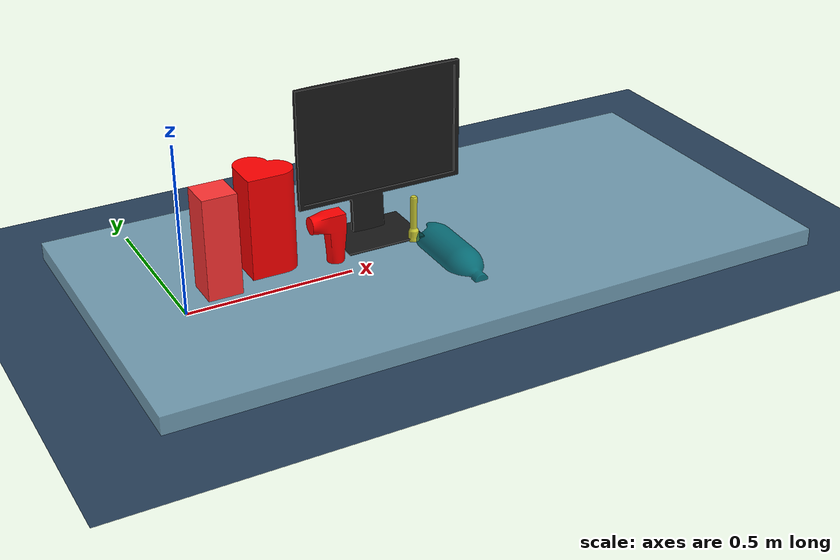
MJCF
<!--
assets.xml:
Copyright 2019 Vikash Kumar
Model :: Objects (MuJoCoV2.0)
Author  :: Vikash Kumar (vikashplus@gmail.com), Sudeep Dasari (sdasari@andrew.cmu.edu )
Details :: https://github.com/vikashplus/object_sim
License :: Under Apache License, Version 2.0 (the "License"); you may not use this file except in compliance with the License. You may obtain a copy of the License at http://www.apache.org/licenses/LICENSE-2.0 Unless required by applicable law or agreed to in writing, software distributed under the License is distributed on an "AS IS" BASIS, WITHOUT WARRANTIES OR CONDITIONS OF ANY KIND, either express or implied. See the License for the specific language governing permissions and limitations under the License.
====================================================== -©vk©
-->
<?xml version="1.0" encoding="utf-8"?>

<mujoco>
	<compiler angle="radian" />

	<option timestep="0.001" tolerance="1e-9" integrator="implicitfast" iterations="100" ls_iterations="100">
		<flag warmstart="enable" multiccd="enable"/>
	</option>

	<visual>
		<global offwidth="1280" offheight="720"/>
	</visual>

	<!-- v ROBOT actuators will inject here v -->

	<!-- v ROBOT actuators will inject here v -->

	<size njmax="500" nconmax="100" />

	<!-- v Per-object assets (meshes, mats) will inject here v -->

    <compiler meshdir="/home/hylander/Documents/github/mujoco/assets/object_sim"/>
    <include file="/home/hylander/Documents/github/mujoco/assets/common_modified.xml"/>
    <include file="/home/hylander/Documents/github/mujoco/assets/object_sim/flashlight/assets.xml"/>

	<!-- ^ Per-object assets (meshes, mats) will inject here ^ -->

	<worldbody>
		<geom name="floor" size="5 5 5" type="plane" material="grid_mat"/>

		<!-- Table Surface === Recall geom SIZE is half-dims so table surface is z=0.1 -->
		<body pos="0.75 0 0" name="table0">
			<geom size="1 0.5 0.05" type="box" name="table" mass="2000" material="table_mat" friction="1 0.005 0.0001"></geom>
			<site name="surface_site" pos="0 0 0" size = "0.02 0.02 0.02" type="box" rgba="1 1 0 0"></site>
			<!-- TEMPORARY SITE -->
		</body>

		<!-- v Object body will inject here v -->

            <body name="box_base" pos="0.1 0.0 0.2" euler="0 0 0">
                <geom name="payload" type="box" mass="0.615" size="0.05 0.05 0.15" material="block_mat"/>
            </body>

            <body name="heart_base" pos="0.2 0.0 0.05" euler="0 0 0">
                <geom name="heart" type="mesh" mesh="heart_exp" rgba="1 0 0 1"/>
            </body>

            <body name="L_base" pos="0.45 0.0 0.05" euler="0 0 0">
                <geom name="L" type="mesh" mesh="L_exp" rgba="1 0 0 1"/>
            </body>

            <body name="monitor_base" pos="0.5 0.0 0.05" euler="0 0 0">
                <geom name="monitor" type="mesh" mesh="monitor_exp" rgba="0.1 0.1 0.1 1"/>
            </body>

            <body name="soda_base" pos="0.75 0.0 0.05" euler="1.5719 0 0">
                <geom name="soda" type="mesh" mesh="soda_exp" rgba="0 0.6 0.6 0.6"/>
            </body>

            <body name="flashlight_base" pos="0.7 0.0 0.12" quat="1 0 0 0" childclass="grab">
                <geom name="flashlight_visual" mesh="flashlight" rgba="0.8 0.8 0.2 1" />
            </body>

		<!-- ^ Object body will inject here ^ -->

		<light directional="true" ambient="0.2 0.2 0.2" diffuse="0.8 0.8 0.8" specular="0.3 0.3 0.3" castshadow="false" pos="0 0 4" dir="0 0 -1" name="light0"></light>
	</worldbody>
</mujoco>

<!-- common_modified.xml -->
<mujoco>
    <compiler angle="radian" />

    <asset>
        <material name="MatObject" specular="0.75" shininess="0.1" reflectance="0.5" rgba="0.9 0.7 0.5 1" />
    </asset>

<!--  THESE ARE MINE FOR THE ENVIRONMENT  -->
    <asset>
        <texture type="skybox" builtin="gradient" rgb1="0.45 0.6 0.807" rgb2="0.46 0.87 0.58" width="32" height="32"></texture>
        <texture name="grid" type="2d" builtin="checker" rgb1=".1 .2 .3" rgb2=".2 .3 .4" width="300" height="300"/>
        <texture name="checkers" type="2d" builtin="checker" rgb1="0.5 0.75 0.8" rgb2="0.9 0.55 0.86" width="300" height="300"/>

        <material name="floor_mat" specular="0" shininess="0.5" reflectance="0" rgba="0.2 0.2 0.2 1"></material>
        <material name="table_mat" specular="0" shininess="0.5" reflectance="0" rgba="0.57 0.75 0.83 0.8"></material>
        <material name="block_mat" specular="0" shininess="0.5" reflectance="0" rgba="1 0.2 0.2 1"></material>
        <material name="robot0:geomMat" shininess="0.03" specular="0.4"></material>
        <material name="robot0:gripper_finger_mat" shininess="0.03" specular="0.4" reflectance="0"></material>
        <material name="robot0:gripper_mat" shininess="0.03" specular="0.4" reflectance="0"></material>
        <material name="robot0:base_mat" shininess="0.03" specular="0.4" reflectance="0"></material>
        <material name="grid_mat" texture="grid" texrepeat="8 8" reflectance="0.2"></material>
        <material name="checkers_mat" texture="checkers" texrepeat="8 8" reflectance="0"></material>

		<mesh name="base_link"   file="my_objects/robot/base_link.stl" />
        <mesh name="link_1"      file="my_objects/robot/link_1.stl" />
        <mesh name="link_2"      file="my_objects/robot/link_2.stl" />
        <mesh name="link_3"      file="my_objects/robot/link_3.stl" />
        <mesh name="link_4"      file="my_objects/robot/link_4.stl" />
        <mesh name="link_5"      file="my_objects/robot/link_5.stl" />
        <mesh name="link_6"      file="my_objects/robot/link_6.stl" />
        <mesh name="pusher_link" file="my_objects/robot/pusher_link.stl"/>

        <!-- MY OBJECTS -->
        <mesh name="flashlight_exp" file="my_objects/flashlight/flashlight_exp.stl" />
        <mesh name="heart_exp" file="my_objects/heart/heart_exp.stl" />
        <mesh name="L_exp" file="my_objects/L/L_exp.stl" />
        <mesh name="monitor_exp" file="my_objects/monitor/monitor_exp.stl" />
        <mesh name="soda_exp" file="my_objects/soda/soda_exp.stl"/>
    </asset>

<!-- These are vendor's -->
    <default>
        <default class="grab">
            <joint limited="false" margin="0.01" armature="0.001" damping="0" frictionloss="0.001" />
            <geom type="mesh"  rgba=".93 .99 .97 1.0"/>
            <site size="0.005 0 0" rgba="0.4 0.9 0.4 1" />
            <default class="object_col">
                <geom type="mesh" density="1250" contype="1" conaffinity="1" friction="1 0.5 0.01" margin="0.0005" condim="4" rgba=".3 .4 .5 1" group="3"/>
            </default>
        </default>
    </default>
</mujoco>

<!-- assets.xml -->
<mujocoinclude model="">
    <asset>
        <mesh name="flashlight" file="../object_sim/flashlight/flashlight.stl"/>
        <mesh name="contact0" file="../object_sim/flashlight/contact0.stl"/>
        <mesh name="contact1" file="../object_sim/flashlight/contact1.stl"/>
    </asset>
</mujocoinclude>
